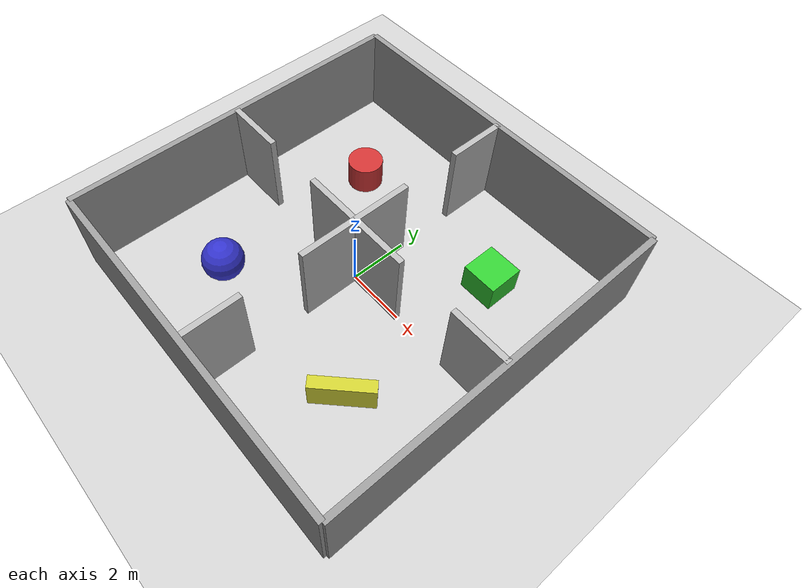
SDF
<?xml version="1.0" ?>
<sdf version="1.9">
  <world name="four_rooms_env">
    <physics name="1ms" type="ignored">
      <max_step_size>0.02</max_step_size>
      <real_time_factor>0</real_time_factor>
    </physics>
    <plugin filename="gz-sim-physics-system" name="gz::sim::systems::Physics"/>
    <plugin filename="gz-sim-user-commands-system" name="gz::sim::systems::UserCommands"/>
    <plugin filename="gz-sim-scene-broadcaster-system" name="gz::sim::systems::SceneBroadcaster"/>
    <plugin filename="gz-sim-sensors-system" name="gz::sim::systems::Sensors">
      <render_engine>ogre2</render_engine>
    </plugin>
    <plugin filename="gz-sim-imu-system" name="gz::sim::systems::Imu"/>
    <plugin filename="gz-sim-contact-system" name="gz::sim::systems::Contact"/>

    <gravity>0 0 -9.81</gravity>

    <light type="directional" name="sun">
      <cast_shadows>true</cast_shadows>
      <pose>0 0 10 0 0 0</pose>
      <diffuse>0.8 0.8 0.8 1</diffuse>
      <specular>0.2 0.2 0.2 1</specular>
      <direction>-0.5 0.1 -0.9</direction>
    </light>

    <model name="ground_plane">
      <static>true</static>
      <link name="link">
        <collision name="collision">
          <geometry><plane><normal>0 0 1</normal><size>20 20</size></plane></geometry>
        </collision>
        <visual name="visual">
          <geometry><plane><normal>0 0 1</normal><size>20 20</size></plane></geometry>
          <material><ambient>0.8 0.8 0.8 1</ambient><diffuse>0.8 0.8 0.8 1</diffuse></material>
        </visual>
      </link>
    </model>

    <!-- 12x12m Building -->
    <model name="building">
      <static>true</static>

      <!-- Outer Walls -->
      <link name="wall_n">
        <pose>0 6 1.5 0 0 0</pose>
        <collision name="c"><geometry><box><size>12 0.2 3</size></box></geometry></collision>
        <visual name="v"><geometry><box><size>12 0.2 3</size></box></geometry>
          <material><ambient>0.6 0.6 0.6 1</ambient></material></visual>
      </link>
      <link name="wall_s">
        <pose>0 -6 1.5 0 0 0</pose>
        <collision name="c"><geometry><box><size>12 0.2 3</size></box></geometry></collision>
        <visual name="v"><geometry><box><size>12 0.2 3</size></box></geometry>
          <material><ambient>0.6 0.6 0.6 1</ambient></material></visual>
      </link>
      <link name="wall_w">
        <pose>-6 0 1.5 0 0 0</pose>
        <collision name="c"><geometry><box><size>0.2 12 3</size></box></geometry></collision>
        <visual name="v"><geometry><box><size>0.2 12 3</size></box></geometry>
          <material><ambient>0.6 0.6 0.6 1</ambient></material></visual>
      </link>
      <link name="wall_e">
        <pose>6 0 1.5 0 0 0</pose>
        <collision name="c"><geometry><box><size>0.2 12 3</size></box></geometry></collision>
        <visual name="v"><geometry><box><size>0.2 12 3</size></box></geometry>
          <material><ambient>0.6 0.6 0.6 1</ambient></material></visual>
      </link>

      <!-- Inner Horizontal Walls with doors -->
      <link name="wall_h_e1">
        <pose>1 0 1.5 0 0 0</pose>
        <collision name="c"><geometry><box><size>2 0.2 3</size></box></geometry></collision>
        <visual name="v"><geometry><box><size>2 0.2 3</size></box></geometry></visual>
      </link>
      <link name="wall_h_e2">
        <pose>5 0 1.5 0 0 0</pose>
        <collision name="c"><geometry><box><size>2 0.2 3</size></box></geometry></collision>
        <visual name="v"><geometry><box><size>2 0.2 3</size></box></geometry></visual>
      </link>
      <link name="wall_h_w1">
        <pose>-5 0 1.5 0 0 0</pose>
        <collision name="c"><geometry><box><size>2 0.2 3</size></box></geometry></collision>
        <visual name="v"><geometry><box><size>2 0.2 3</size></box></geometry></visual>
      </link>
      <link name="wall_h_w2">
        <pose>-1 0 1.5 0 0 0</pose>
        <collision name="c"><geometry><box><size>2 0.2 3</size></box></geometry></collision>
        <visual name="v"><geometry><box><size>2 0.2 3</size></box></geometry></visual>
      </link>

      <!-- Inner Vertical Walls with doors -->
      <link name="wall_v_n1">
        <pose>0 1 1.5 0 0 0</pose>
        <collision name="c"><geometry><box><size>0.2 2 3</size></box></geometry></collision>
        <visual name="v"><geometry><box><size>0.2 2 3</size></box></geometry></visual>
      </link>
      <link name="wall_v_n2">
        <pose>0 5 1.5 0 0 0</pose>
        <collision name="c"><geometry><box><size>0.2 2 3</size></box></geometry></collision>
        <visual name="v"><geometry><box><size>0.2 2 3</size></box></geometry></visual>
      </link>
      <link name="wall_v_s1">
        <pose>0 -5 1.5 0 0 0</pose>
        <collision name="c"><geometry><box><size>0.2 2 3</size></box></geometry></collision>
        <visual name="v"><geometry><box><size>0.2 2 3</size></box></geometry></visual>
      </link>
      <link name="wall_v_s2">
        <pose>0 -1 1.5 0 0 0</pose>
        <collision name="c"><geometry><box><size>0.2 2 3</size></box></geometry></collision>
        <visual name="v"><geometry><box><size>0.2 2 3</size></box></geometry></visual>
      </link>
    </model>

    <!-- Obstacles (1 per room, static, different shapes) -->
    <!-- Room 1 (NW) -->
    <model name="obs_nw">
      <static>true</static>
      <pose>-3 3 0.5 0 0 0</pose>
      <link name="link">
        <collision name="c"><geometry><cylinder><radius>0.6</radius><length>1.0</length></cylinder></geometry></collision>
        <visual name="v"><geometry><cylinder><radius>0.6</radius><length>1.0</length></cylinder></geometry>
        <material><ambient>0.8 0.2 0.2 1</ambient></material></visual>
      </link>
    </model>

    <!-- Room 2 (NE) -->
    <model name="obs_ne">
      <static>true</static>
      <pose>3 3 0.5 0 0 0</pose>
      <link name="link">
        <collision name="c"><geometry><box><size>1.2 1.2 1.0</size></box></geometry></collision>
        <visual name="v"><geometry><box><size>1.2 1.2 1.0</size></box></geometry>
        <material><ambient>0.2 0.8 0.2 1</ambient></material></visual>
      </link>
    </model>

    <!-- Room 3 (SW) -->
    <model name="obs_sw">
      <static>true</static>
      <pose>-3 -3 0.5 0 0 0</pose>
      <link name="link">
        <collision name="c"><geometry><sphere><radius>0.7</radius></sphere></geometry></collision>
        <visual name="v"><geometry><sphere><radius>0.7</radius></sphere></geometry>
        <material><ambient>0.2 0.2 0.8 1</ambient></material></visual>
      </link>
    </model>

    <!-- Room 4 (SE) -->
    <model name="obs_se">
      <static>true</static>
      <pose>3 -3 0.5 0 0 0.785398</pose>
      <link name="link">
        <collision name="c"><geometry><box><size>2.0 0.4 1.0</size></box></geometry></collision>
        <visual name="v"><geometry><box><size>2.0 0.4 1.0</size></box></geometry>
        <material><ambient>0.8 0.8 0.2 1</ambient></material></visual>
      </link>
    </model>

  </world>
</sdf>
